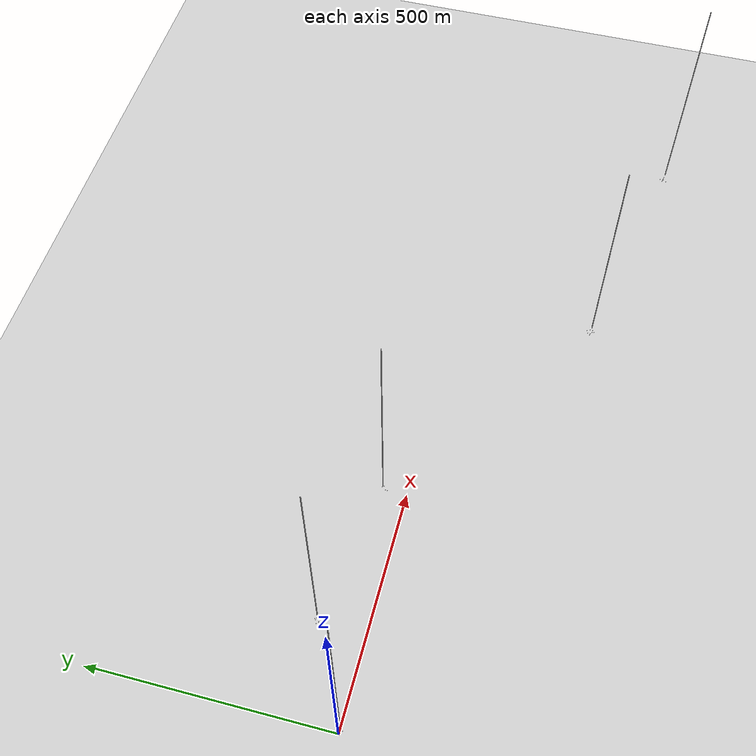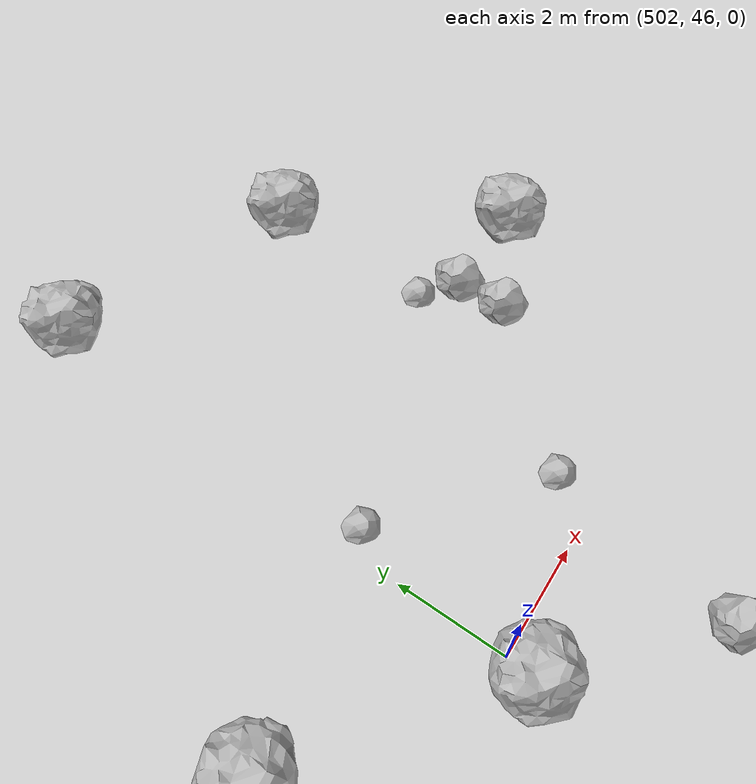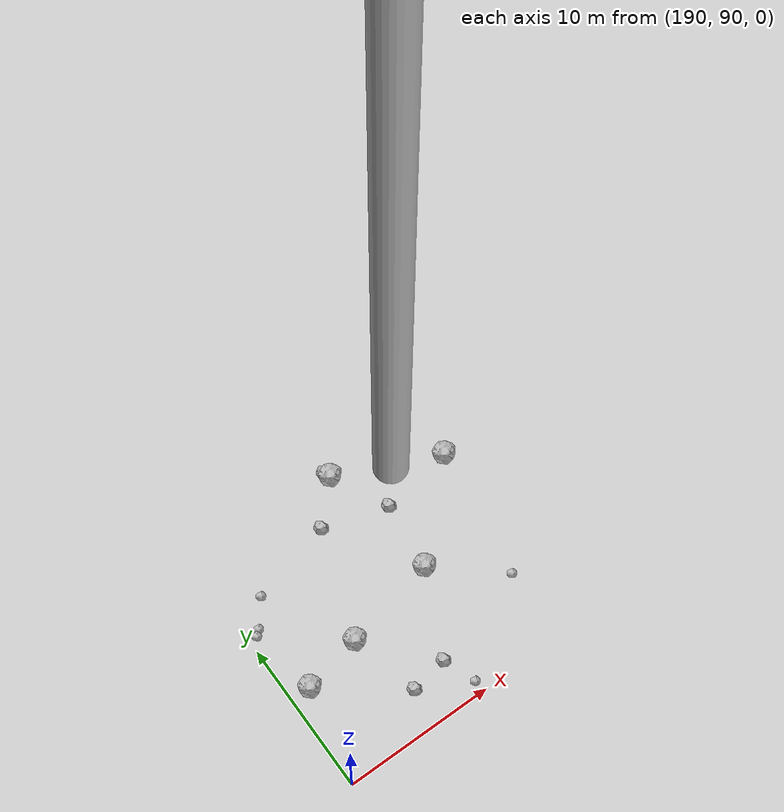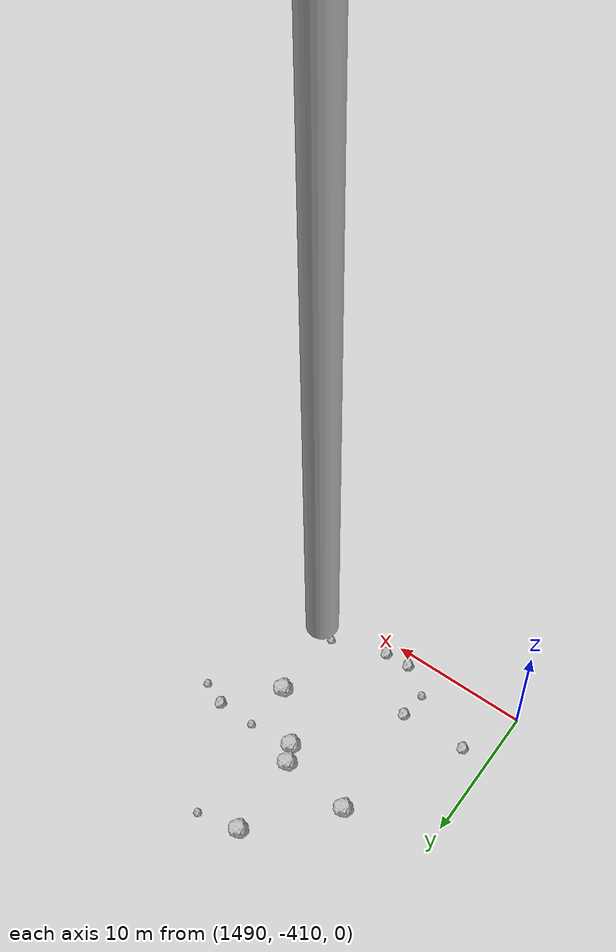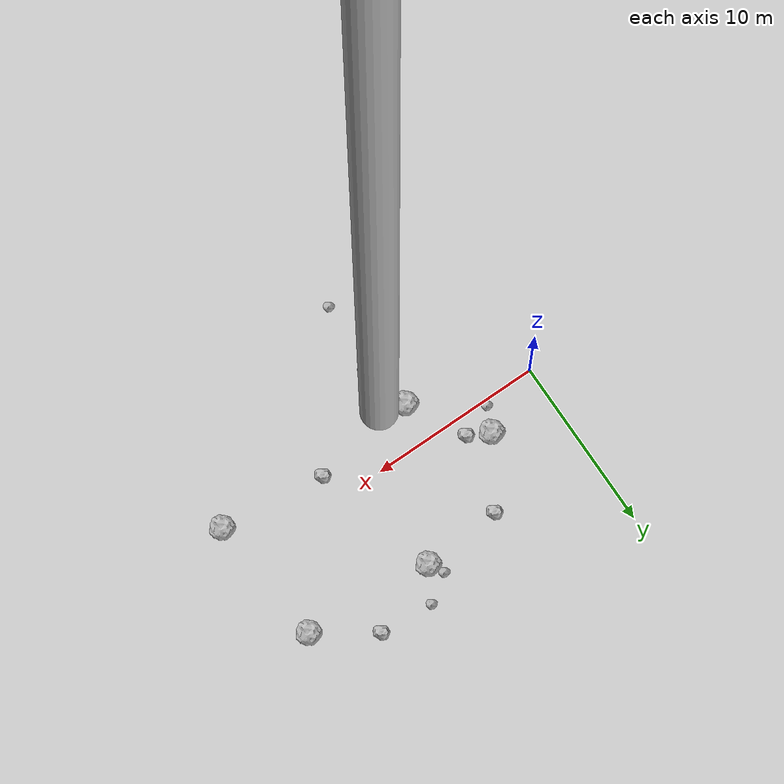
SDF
<?xml version="1.0" ?>
<sdf version="1.6">
  <world name="default">

    <include>
      <uri>model://custom_ground</uri>
    </include>

    <include>
      <uri>model://sun</uri>
    </include>

    <spherical_coordinates>
      <surface_model>EARTH_WGS84</surface_model>
      <latitude_deg>38.161479</latitude_deg>
      <longitude_deg>-122.454630</longitude_deg>
      <elevation>488.0</elevation>
      <heading_deg>90</heading_deg>
    </spherical_coordinates>

    <model name="rock1_0_0">
      <include>
        <uri>model://rock1</uri>
        <pose>10.785627713623727 5.713245306909931 0.5 0 0 0</pose>
      </include>
    </model>
    <model name="rock1_0_1">
      <include>
        <uri>model://rock1</uri>
        <pose>6.751739823481162 -2.329866166866803 0.5 0 0 0</pose>
      </include>
    </model>
    <model name="rock1_0_2">
      <include>
        <uri>model://rock1</uri>
        <pose>18.31108349132148 5.12580169232039 0.5 0 0 0</pose>
      </include>
    </model>
    <model name="rock1_0_3">
      <include>
        <uri>model://rock1</uri>
        <pose>18.93726916680446 -2.3381303843064334 0.5 0 0 0</pose>
      </include>
    </model>
    <model name="rock1_0_4">
      <include>
        <uri>model://rock1</uri>
        <pose>3.7557918805287493 1.672311762316296 0.5 0 0 0</pose>
      </include>
    </model>
    <model name="rock2_0_0">
      <include>
        <uri>model://rock2</uri>
        <pose>6.12482078314555 5.420068814631369 0.3 0 0 0</pose>
      </include>
    </model>
    <model name="rock2_0_1">
      <include>
        <uri>model://rock2</uri>
        <pose>15.00526444459682 7.3632285162839 0.3 0 0 0</pose>
      </include>
    </model>
    <model name="rock2_0_2">
      <include>
        <uri>model://rock2</uri>
        <pose>7.485268998604539 -5.081534081625662 0.3 0 0 0</pose>
      </include>
    </model>
    <model name="rock2_0_3">
      <include>
        <uri>model://rock2</uri>
        <pose>4.966965240083963 1.0181708988506433 0.3 0 0 0</pose>
      </include>
    </model>
    <model name="rock2_0_4">
      <include>
        <uri>model://rock2</uri>
        <pose>12.741568641624696 -1.596996564821687 0.3 0 0 0</pose>
      </include>
    </model>
    <model name="rock3_0_0">
      <include>
        <uri>model://rock3</uri>
        <pose>7.054572802568035 -3.2700919587782273 0.2 0 0 0</pose>
      </include>
    </model>
    <model name="rock3_0_1">
      <include>
        <uri>model://rock3</uri>
        <pose>11.834101494254817 7.590847337057376 0.2 0 0 0</pose>
      </include>
    </model>
    <model name="rock3_0_2">
      <include>
        <uri>model://rock3</uri>
        <pose>10.27190788108583 6.536658976014252 0.2 0 0 0</pose>
      </include>
    </model>
    <model name="rock3_0_3">
      <include>
        <uri>model://rock3</uri>
        <pose>3.067028334600206 0.2538624798677951 0.2 0 0 0</pose>
      </include>
    </model>
    <model name="rock3_0_4">
      <include>
        <uri>model://rock3</uri>
        <pose>7.101905434419773 -9.251151570975505 0.2 0 0 0</pose>
      </include>
    </model>
    <model name="rock1_1_0">
      <include>
        <uri>model://rock1</uri>
        <pose>191.39091666970134 96.31548357369368 0.5 0 0 0</pose>
      </include>
    </model>
    <model name="rock1_1_1">
      <include>
        <uri>model://rock1</uri>
        <pose>200.11390012781433 106.47245142134733 0.5 0 0 0</pose>
      </include>
    </model>
    <model name="rock1_1_2">
      <include>
        <uri>model://rock1</uri>
        <pose>195.30742483930572 97.10416462230302 0.5 0 0 0</pose>
      </include>
    </model>
    <model name="rock1_1_3">
      <include>
        <uri>model://rock1</uri>
        <pose>201.49133059180414 98.39025594169505 0.5 0 0 0</pose>
      </include>
    </model>
    <model name="rock1_1_4">
      <include>
        <uri>model://rock1</uri>
        <pose>206.71278971386758 103.51557563882763 0.5 0 0 0</pose>
      </include>
    </model>
    <model name="rock2_1_0">
      <include>
        <uri>model://rock2</uri>
        <pose>201.91927136579068 102.80501824060933 0.3 0 0 0</pose>
      </include>
    </model>
    <model name="rock2_1_1">
      <include>
        <uri>model://rock2</uri>
        <pose>196.42377671703304 92.5258389572499 0.3 0 0 0</pose>
      </include>
    </model>
    <model name="rock2_1_2">
      <include>
        <uri>model://rock2</uri>
        <pose>197.6838857810525 104.07863541613655 0.3 0 0 0</pose>
      </include>
    </model>
    <model name="rock2_1_3">
      <include>
        <uri>model://rock2</uri>
        <pose>199.86070935526882 106.87117280458094 0.3 0 0 0</pose>
      </include>
    </model>
    <model name="rock2_1_4">
      <include>
        <uri>model://rock2</uri>
        <pose>198.90941719654418 92.93740822989069 0.3 0 0 0</pose>
      </include>
    </model>
    <model name="rock3_1_0">
      <include>
        <uri>model://rock3</uri>
        <pose>205.5318542362251 94.86361057346085 0.2 0 0 0</pose>
      </include>
    </model>
    <model name="rock3_1_1">
      <include>
        <uri>model://rock3</uri>
        <pose>192.18273285011747 102.68843764475102 0.2 0 0 0</pose>
      </include>
    </model>
    <model name="rock3_1_2">
      <include>
        <uri>model://rock3</uri>
        <pose>190.52834604199091 100.77056625247758 0.2 0 0 0</pose>
      </include>
    </model>
    <model name="rock3_1_3">
      <include>
        <uri>model://rock3</uri>
        <pose>199.70456441673977 90.74508404416804 0.2 0 0 0</pose>
      </include>
    </model>
    <model name="rock3_1_4">
      <include>
        <uri>model://rock3</uri>
        <pose>190.8821928728557 101.07733140206767 0.2 0 0 0</pose>
      </include>
    </model>
    <model name="rock1_2_0">
      <include>
        <uri>model://rock1</uri>
        <pose>502.5835080970754 55.82596670363675 0.5 0 0 0</pose>
      </include>
    </model>
    <model name="rock1_2_1">
      <include>
        <uri>model://rock1</uri>
        <pose>498.6095318350948 48.172616658036034 0.5 0 0 0</pose>
      </include>
    </model>
    <model name="rock1_2_2">
      <include>
        <uri>model://rock1</uri>
        <pose>509.51702906403335 50.289668785836795 0.5 0 0 0</pose>
      </include>
    </model>
    <model name="rock1_2_3">
      <include>
        <uri>model://rock1</uri>
        <pose>507.061294506215 54.16594618445934 0.5 0 0 0</pose>
      </include>
    </model>
    <model name="rock1_2_4">
      <include>
        <uri>model://rock1</uri>
        <pose>502.0153823092211 45.52126528904752 0.5 0 0 0</pose>
      </include>
    </model>
    <model name="rock2_2_0">
      <include>
        <uri>model://rock2</uri>
        <pose>507.5138147732636 50.295799426359366 0.3 0 0 0</pose>
      </include>
    </model>
    <model name="rock2_2_1">
      <include>
        <uri>model://rock2</uri>
        <pose>501.310368438092 41.73037896114279 0.3 0 0 0</pose>
      </include>
    </model>
    <model name="rock2_2_2">
      <include>
        <uri>model://rock2</uri>
        <pose>504.3736046213402 43.2895701395683 0.3 0 0 0</pose>
      </include>
    </model>
    <model name="rock2_2_3">
      <include>
        <uri>model://rock2</uri>
        <pose>494.5189644061097 45.44447374074204 0.3 0 0 0</pose>
      </include>
    </model>
    <model name="rock2_2_4">
      <include>
        <uri>model://rock2</uri>
        <pose>507.50039796925944 49.32225121057514 0.3 0 0 0</pose>
      </include>
    </model>
    <model name="rock3_2_0">
      <include>
        <uri>model://rock3</uri>
        <pose>506.82858806100035 50.768900699871075 0.2 0 0 0</pose>
      </include>
    </model>
    <model name="rock3_2_1">
      <include>
        <uri>model://rock3</uri>
        <pose>498.5710741892968 43.68698738296184 0.2 0 0 0</pose>
      </include>
    </model>
    <model name="rock3_2_2">
      <include>
        <uri>model://rock3</uri>
        <pose>502.4090530952844 48.993769788062394 0.2 0 0 0</pose>
      </include>
    </model>
    <model name="rock3_2_3">
      <include>
        <uri>model://rock3</uri>
        <pose>505.02841065072045 46.7625711150898 0.2 0 0 0</pose>
      </include>
    </model>
    <model name="rock3_2_4">
      <include>
        <uri>model://rock3</uri>
        <pose>495.54363241402183 46.280953123110855 0.2 0 0 0</pose>
      </include>
    </model>
    <model name="rock1_3_0">
      <include>
        <uri>model://rock1</uri>
        <pose>996.9044551015435 -299.9400414763751 0.5 0 0 0</pose>
      </include>
    </model>
    <model name="rock1_3_1">
      <include>
        <uri>model://rock1</uri>
        <pose>1001.6364179080178 -302.26079169064053 0.5 0 0 0</pose>
      </include>
    </model>
    <model name="rock1_3_2">
      <include>
        <uri>model://rock1</uri>
        <pose>1007.1883182259721 -293.0815452444936 0.5 0 0 0</pose>
      </include>
    </model>
    <model name="rock1_3_3">
      <include>
        <uri>model://rock1</uri>
        <pose>993.2431671195267 -294.65612604515746 0.5 0 0 0</pose>
      </include>
    </model>
    <model name="rock1_3_4">
      <include>
        <uri>model://rock1</uri>
        <pose>1004.055101044211 -291.4438346035282 0.5 0 0 0</pose>
      </include>
    </model>
    <model name="rock2_3_0">
      <include>
        <uri>model://rock2</uri>
        <pose>993.666844572626 -298.2432263455278 0.3 0 0 0</pose>
      </include>
    </model>
    <model name="rock2_3_1">
      <include>
        <uri>model://rock2</uri>
        <pose>997.568248794325 -293.8906711643187 0.3 0 0 0</pose>
      </include>
    </model>
    <model name="rock2_3_2">
      <include>
        <uri>model://rock2</uri>
        <pose>995.4057281586608 -297.02373838087055 0.3 0 0 0</pose>
      </include>
    </model>
    <model name="rock2_3_3">
      <include>
        <uri>model://rock2</uri>
        <pose>1006.2377576104271 -303.3075263024686 0.3 0 0 0</pose>
      </include>
    </model>
    <model name="rock2_3_4">
      <include>
        <uri>model://rock2</uri>
        <pose>995.5791614409883 -300.4597968608408 0.3 0 0 0</pose>
      </include>
    </model>
    <model name="rock3_3_0">
      <include>
        <uri>model://rock3</uri>
        <pose>1003.0342943314886 -307.1681764673419 0.2 0 0 0</pose>
      </include>
    </model>
    <model name="rock3_3_1">
      <include>
        <uri>model://rock3</uri>
        <pose>1005.352121107569 -304.0542923473228 0.2 0 0 0</pose>
      </include>
    </model>
    <model name="rock3_3_2">
      <include>
        <uri>model://rock3</uri>
        <pose>995.2614001819396 -303.4284135376847 0.2 0 0 0</pose>
      </include>
    </model>
    <model name="rock3_3_3">
      <include>
        <uri>model://rock3</uri>
        <pose>1007.9982947356389 -297.74883424082896 0.2 0 0 0</pose>
      </include>
    </model>
    <model name="rock3_3_4">
      <include>
        <uri>model://rock3</uri>
        <pose>1007.419459375646 -303.20772566639624 0.2 0 0 0</pose>
      </include>
    </model>
    <model name="rock1_4_0">
      <include>
        <uri>model://rock1</uri>
        <pose>1501.4137088010898 -391.8153276327017 0.5 0 0 0</pose>
      </include>
    </model>
    <model name="rock1_4_1">
      <include>
        <uri>model://rock1</uri>
        <pose>1502.121525505212 -399.0519121356924 0.5 0 0 0</pose>
      </include>
    </model>
    <model name="rock1_4_2">
      <include>
        <uri>model://rock1</uri>
        <pose>1505.1215295840022 -402.2988882167593 0.5 0 0 0</pose>
      </include>
    </model>
    <model name="rock1_4_3">
      <include>
        <uri>model://rock1</uri>
        <pose>1501.5502242359582 -397.8117964573562 0.5 0 0 0</pose>
      </include>
    </model>
    <model name="rock1_4_4">
      <include>
        <uri>model://rock1</uri>
        <pose>1496.334651596207 -397.23579255945594 0.5 0 0 0</pose>
      </include>
    </model>
    <model name="rock2_4_0">
      <include>
        <uri>model://rock2</uri>
        <pose>1496.854153155116 -405.65500840205664 0.3 0 0 0</pose>
      </include>
    </model>
    <model name="rock2_4_1">
      <include>
        <uri>model://rock2</uri>
        <pose>1508.16920249077 -398.85059151206787 0.3 0 0 0</pose>
      </include>
    </model>
    <model name="rock2_4_2">
      <include>
        <uri>model://rock2</uri>
        <pose>1500.5888339151668 -408.95390785541787 0.3 0 0 0</pose>
      </include>
    </model>
    <model name="rock2_4_3">
      <include>
        <uri>model://rock2</uri>
        <pose>1498.7467411150967 -409.0468919044513 0.3 0 0 0</pose>
      </include>
    </model>
    <model name="rock2_4_4">
      <include>
        <uri>model://rock2</uri>
        <pose>1491.987200905554 -405.8608748140216 0.3 0 0 0</pose>
      </include>
    </model>
    <model name="rock3_4_0">
      <include>
        <uri>model://rock3</uri>
        <pose>1496.58922711632 -407.65735125364114 0.2 0 0 0</pose>
      </include>
    </model>
    <model name="rock3_4_1">
      <include>
        <uri>model://rock3</uri>
        <pose>1505.3571600926994 -398.8114846840036 0.2 0 0 0</pose>
      </include>
    </model>
    <model name="rock3_4_2">
      <include>
        <uri>model://rock3</uri>
        <pose>1504.5102806123293 -407.61299940049906 0.2 0 0 0</pose>
      </include>
    </model>
    <model name="rock3_4_3">
      <include>
        <uri>model://rock3</uri>
        <pose>1504.4844789052966 -391.25675766936934 0.2 0 0 0</pose>
      </include>
    </model>
    <model name="rock3_4_4">
      <include>
        <uri>model://rock3</uri>
        <pose>1509.8530844833322 -399.591157502942 0.2 0 0 0</pose>
      </include>
    </model>

    <model name="cylinder_1">
      <static>true</static>
      <link name="link">
        <visual name="visual">
          <geometry>
            <cylinder>
              <radius>1</radius>
              <length>500</length>
            </cylinder>
          </geometry>
        </visual>
      </link>
      <pose>10 0 270 0 0 0</pose>
    </model>

    <model name="cylinder_2">
      <static>true</static>
      <link name="link">
        <visual name="visual">
          <geometry>
            <cylinder>
              <radius>1</radius>
              <length>500</length>
            </cylinder>
          </geometry>
        </visual>
      </link>
      <pose>200 100 270 0 0 0</pose>
    </model>

    <model name="cylinder_3">
      <static>true</static>
      <link name="link">
        <visual name="visual">
          <geometry>
            <cylinder>
              <radius>1</radius>
              <length>500</length>
            </cylinder>
          </geometry>
        </visual>
      </link>
      <pose>500 50 270 0 0 0</pose>
    </model>

    <model name="cylinder_4">
      <static>true</static>
      <link name="link">
        <visual name="visual">
          <geometry>
            <cylinder>
              <radius>1</radius>
              <length>500</length>
            </cylinder>
          </geometry>
        </visual>
      </link>
      <pose>1000 -300 270 0 0 0</pose>
    </model>

    <model name="cylinder_5">
      <static>true</static>
      <link name="link">
        <visual name="visual">
          <geometry>
            <cylinder>
              <radius>1</radius>
              <length>500</length>
            </cylinder>
          </geometry>
        </visual>
      </link>
      <pose>1500 -400 270 0 0 0</pose>
    </model>

  </world>
</sdf>

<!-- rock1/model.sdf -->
<sdf version="1.6">
  <model name="rock1">
    <static>true</static> <!-- Set to true if the model should not move -->
    <pose>0 0 0 0 0 0</pose>

    <!--z offset is 0.5 for full scale-->

    <link name="link">
      <collision name="rock1_collision">
        <geometry>
          <mesh>
            <uri>model://meshes/rock1.dae</uri>
          </mesh>
        </geometry>
      </collision>
      <visual name="rock1_visual">
        <geometry>
          <mesh>
            <uri>model://meshes/rock1.dae</uri>
          </mesh>
        </geometry>
        <material>
          <script>
            <uri>model://materials/scripts/sand_pebbles.material</uri>
            <name>custom_ground/Image</name>
          </script>
        </material>
      </visual>
    </link>
  </model>
</sdf>

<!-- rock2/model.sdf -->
<sdf version="1.6">
  <model name="rock2">
    <static>true</static> <!-- Set to true if the model should not move -->
    <pose>0 0 0 0 0 0</pose>

    <!--z offset is 0.3 for full scale-->

    <link name="link">
      <collision name="rock2_collision">
        <geometry>
          <mesh>
            <uri>model://meshes/rock2.dae</uri>
          </mesh>
        </geometry>
      </collision>
      <visual name="rock2_visual">
        <geometry>
          <mesh>
            <uri>model://meshes/rock2.dae</uri>
          </mesh>
        </geometry>
        <material>
          <script>
            <uri>model://materials/scripts/sand_pebbles.material</uri>
            <name>custom_ground/Image</name>
          </script>
        </material>
      </visual>
    </link>
  </model>
</sdf>

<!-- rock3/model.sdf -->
<sdf version="1.6">
  <model name="rock3">
    <static>true</static> <!-- Set to true if the model should not move -->
    <pose>0 0 0 0 0 0</pose>

    <!--z offset is 0.2 for full scale-->

    <link name="link">
      <collision name="rock3_collision">
        <geometry>
          <mesh>
            <uri>model://meshes/rock3.dae</uri>
          </mesh>
        </geometry>
      </collision>
      <visual name="rock3_visual">
        <geometry>
          <mesh>
            <uri>model://meshes/rock3.dae</uri>
          </mesh>
        </geometry>
        <material>
          <script>
            <uri>model://materials/scripts/sand_pebbles.material</uri>
            <name>custom_ground/Image</name>
          </script>
        </material>
      </visual>
    </link>
  </model>
</sdf>

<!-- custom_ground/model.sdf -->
<sdf version="1.6">
  <model name="custom_ground">
    <static>true</static> <!-- Ground is static and immovable -->
    <link name="ground_link">
      <pose>240 0 0 0 0 0</pose> <!-- Position and orientation relative to the world -->
      <!-- Visual Representation -->
      <visual name="ground_visual">
        <geometry>
          <plane>
            <normal>0 0 1</normal> <!-- Upward facing plane -->
            <size>500 500</size> <!-- Size of the plane -->
          </plane>
        </geometry>
        <material>
          <script>
            <uri>model://materials/scripts/sand_pebbles.material</uri>
            <name>custom_ground/Image</name>
          </script>
        </material>
      </visual>

      <!-- Collision Representation -->
      <collision name="ground_collision">
        <geometry>
          <plane>
            <normal>0 0 1</normal>
            <size>100 100</size>
          </plane>
        </geometry>
      </collision>

    </link>
  </model>
</sdf>
